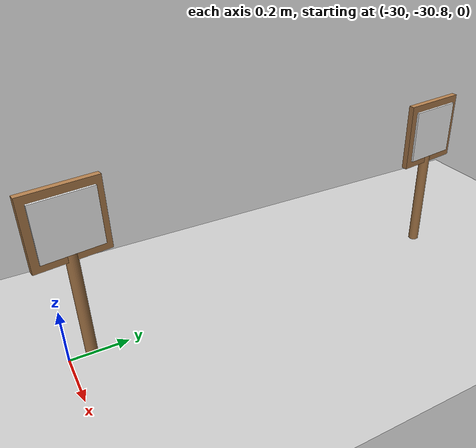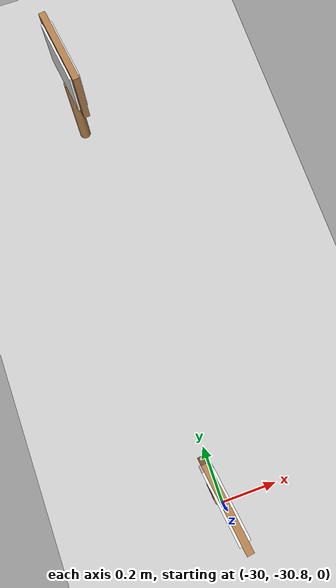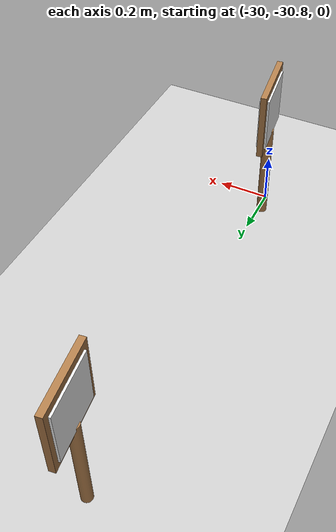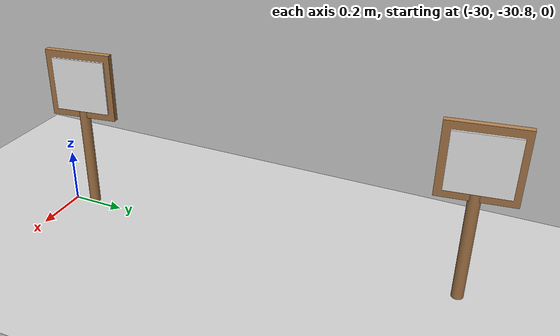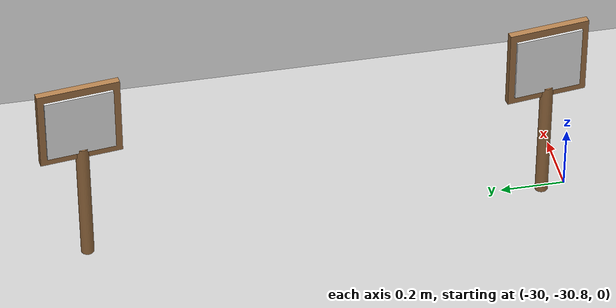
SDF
<sdf version="1.6">
 <world name="default">
  <model name="ground_plane">
   <static>1</static>
   <link name="link">
    <collision name="collision">
     <geometry><plane><normal>0 0 1</normal><size>100 100</size></plane></geometry>
     <surface>
      <contact><collide_bitmask>65535</collide_bitmask></contact>
      <friction><ode><mu>100</mu><mu2>50</mu2></ode></friction>
     </surface>
    </collision>
    <visual name="visual">
     <cast_shadows>0</cast_shadows>
     <geometry><plane><normal>0 0 1</normal><size>100 100</size></plane></geometry>
     <material>
      <script><uri>file://media/materials/scripts/gazebo.material</uri><name>Gazebo/Grey</name></script>
     </material>
    </visual>
   </link>
  </model>
  <model name="aruco_wood_thin_1">
   <link name="link_0">
    <inertial>
     <mass>1</mass>
     <inertia><ixx>0.145833</ixx><ixy>0</ixy><ixz>0</ixz><iyy>0.145833</iyy><iyz>0</iyz><izz>0.125</izz></inertia>
    </inertial>
    <pose>-0.017932 0.660168 -0.097628 0 -0 0</pose>
    <visual name="visual">
     <geometry><cylinder><radius>0.02</radius><length>0.4</length></cylinder></geometry>
     <material>
      <lighting>1</lighting>
      <script><uri>file://media/materials/scripts/gazebo.material</uri><name>Gazebo/Wood</name></script>
      <shader type="vertex"><normal_map>__default__</normal_map></shader>
      <ambient>0.3 0.3 0.3 1</ambient>
      <diffuse>0.7 0.7 0.7 1</diffuse>
      <specular>0.01 0.01 0.01 1</specular>
      <emissive>0 0 0 1</emissive>
     </material>
    </visual>
    <collision name="collision">
     <geometry><cylinder><radius>0.02</radius><length>0.4</length></cylinder></geometry>
     <surface>
      <friction>
       <ode><mu>1</mu><mu2>1</mu2><fdir1>0 0 0</fdir1><slip1>0</slip1><slip2>0</slip2></ode>
       <torsional>
        <coefficient>1</coefficient>
        <patch_radius>0</patch_radius>
        <surface_radius>0</surface_radius>
        <use_patch_radius>1</use_patch_radius>
        <ode><slip>0</slip></ode>
       </torsional>
      </friction>
      <bounce><restitution_coefficient>0</restitution_coefficient><threshold>1e+06</threshold></bounce>
      <contact>
       <collide_without_contact>0</collide_without_contact>
       <collide_without_contact_bitmask>1</collide_without_contact_bitmask>
       <collide_bitmask>1</collide_bitmask>
       <ode>
        <soft_cfm>0</soft_cfm>
        <soft_erp>0.2</soft_erp>
        <kp>1e+13</kp>
        <kd>1</kd>
        <max_vel>0.01</max_vel>
        <min_depth>0</min_depth>
       </ode>
       <bullet>
        <split_impulse>1</split_impulse>
        <split_impulse_penetration_threshold>-0.01</split_impulse_penetration_threshold>
        <soft_cfm>0</soft_cfm>
        <soft_erp>0.2</soft_erp>
        <kp>1e+13</kp>
        <kd>1</kd>
       </bullet>
      </contact>
     </surface>
    </collision>
   </link>
   <link name="link_1">
    <inertial>
     <mass>1.21407</mass>
     <inertia>
      <ixx>0.00864359</ixx>
      <ixy>0</ixy>
      <ixz>0</ixz>
      <iyy>0.00421539</iyy>
      <iyz>0</iyz>
      <izz>0.00446773</izz>
     </inertia>
    </inertial>
    <pose>-0.025899 0.66382 0.194379 0 -0 0</pose>
    <visual name="visual">
     <geometry><box><size>0.013978 0.209676 0.203642</size></box></geometry>
     <material>
      <script><uri>file://scripts</uri><uri>file://textures</uri><name>aruco/standard_opp</name></script>
      <emissive>0 0 0 1</emissive>
      <shader type="vertex"><normal_map>__default__</normal_map></shader>
      <ambient>1 1 1 1</ambient>
      <diffuse>1 1 1 1</diffuse>
      <specular>0 0 0 1</specular>
     </material>
    </visual>
    <collision name="collision">
     <geometry><box><size>0.013978 0.209676 0.203642</size></box></geometry>
     <surface>
      <friction>
       <ode><mu>1</mu><mu2>1</mu2><fdir1>0 0 0</fdir1><slip1>0</slip1><slip2>0</slip2></ode>
       <torsional>
        <coefficient>1</coefficient>
        <patch_radius>0</patch_radius>
        <surface_radius>0</surface_radius>
        <use_patch_radius>1</use_patch_radius>
        <ode><slip>0</slip></ode>
       </torsional>
      </friction>
      <bounce><restitution_coefficient>0</restitution_coefficient><threshold>1e+06</threshold></bounce>
      <contact>
       <collide_without_contact>0</collide_without_contact>
       <collide_without_contact_bitmask>1</collide_without_contact_bitmask>
       <collide_bitmask>1</collide_bitmask>
       <ode>
        <soft_cfm>0</soft_cfm>
        <soft_erp>0.2</soft_erp>
        <kp>1e+13</kp>
        <kd>1</kd>
        <max_vel>0.01</max_vel>
        <min_depth>0</min_depth>
       </ode>
       <bullet>
        <split_impulse>1</split_impulse>
        <split_impulse_penetration_threshold>-0.01</split_impulse_penetration_threshold>
        <soft_cfm>0</soft_cfm>
        <soft_erp>0.2</soft_erp>
        <kp>1e+13</kp>
        <kd>1</kd>
       </bullet>
      </contact>
     </surface>
    </collision>
   </link>
   <link name="link_1_clone">
    <inertial>
     <mass>0.519809</mass>
     <inertia>
      <ixx>0.00549167</ixx>
      <ixy>0</ixy>
      <ixz>0</ixz>
      <iyy>0.00278045</iyy>
      <iyz>0</iyz>
      <izz>0.00275135</izz>
     </inertia>
    </inertial>
    <pose>-0.015207 0.663184 0.195267 0 -0 0</pose>
    <visual name="visual">
     <geometry><box><size>0.021523 0.251103 0.252437</size></box></geometry>
     <material>
      <script><uri>file://scripts</uri><uri>file://textures</uri><name>Gazebo/Wood</name></script>
      <shader type="vertex"><normal_map>__default__</normal_map></shader>
      <ambient>1 1 1 1</ambient>
      <diffuse>1 1 1 1</diffuse>
      <specular>0 0 0 1</specular>
      <emissive>0 0 0 1</emissive>
     </material>
    </visual>
    <collision name="collision">
     <geometry><box><size>0.021523 0.251103 0.252437</size></box></geometry>
     <surface>
      <friction>
       <ode><mu>1</mu><mu2>1</mu2><fdir1>0 0 0</fdir1><slip1>0</slip1><slip2>0</slip2></ode>
       <torsional>
        <coefficient>1</coefficient>
        <patch_radius>0</patch_radius>
        <surface_radius>0</surface_radius>
        <use_patch_radius>1</use_patch_radius>
        <ode><slip>0</slip></ode>
       </torsional>
      </friction>
      <bounce><restitution_coefficient>0</restitution_coefficient><threshold>1e+06</threshold></bounce>
      <contact>
       <collide_without_contact>0</collide_without_contact>
       <collide_without_contact_bitmask>1</collide_without_contact_bitmask>
       <collide_bitmask>1</collide_bitmask>
       <ode>
        <soft_cfm>0</soft_cfm>
        <soft_erp>0.2</soft_erp>
        <kp>1e+13</kp>
        <kd>1</kd>
        <max_vel>0.01</max_vel>
        <min_depth>0</min_depth>
       </ode>
       <bullet>
        <split_impulse>1</split_impulse>
        <split_impulse_penetration_threshold>-0.01</split_impulse_penetration_threshold>
        <soft_cfm>0</soft_cfm>
        <soft_erp>0.2</soft_erp>
        <kp>1e+13</kp>
        <kd>1</kd>
       </bullet>
      </contact>
     </surface>
    </collision>
   </link>
   <link name="link_1_clone_0">
    <inertial>
     <mass>0.238009</mass>
     <inertia>
      <ixx>0.00161175</ixx>
      <ixy>0</ixy>
      <ixz>0</ixz>
      <iyy>0.000787067</iyy>
      <iyz>0</iyz>
      <izz>0.000832042</izz>
     </inertia>
    </inertial>
    <pose>-0.00403 0.665261 0.195247 0 -0 0</pose>
    <visual name="visual">
     <geometry><box><size>0.013624 0.204363 0.198738</size></box></geometry>
     <material>
      <script><uri>file://scripts</uri><uri>file://textures</uri><name>aruco/standard_opp</name></script>
      <emissive>0 0 0 1</emissive>
      <shader type="vertex"><normal_map>__default__</normal_map></shader>
      <ambient>1 1 1 1</ambient>
      <diffuse>1 1 1 1</diffuse>
      <specular>0 0 0 1</specular>
     </material>
    </visual>
    <collision name="collision">
     <geometry><box><size>0.013624 0.204363 0.198738</size></box></geometry>
     <surface>
      <friction>
       <ode><mu>1</mu><mu2>1</mu2><fdir1>0 0 0</fdir1><slip1>0</slip1><slip2>0</slip2></ode>
       <torsional>
        <coefficient>1</coefficient>
        <patch_radius>0</patch_radius>
        <surface_radius>0</surface_radius>
        <use_patch_radius>1</use_patch_radius>
        <ode><slip>0</slip></ode>
       </torsional>
      </friction>
      <bounce><restitution_coefficient>0</restitution_coefficient><threshold>1e+06</threshold></bounce>
      <contact>
       <collide_without_contact>0</collide_without_contact>
       <collide_without_contact_bitmask>1</collide_without_contact_bitmask>
       <collide_bitmask>1</collide_bitmask>
       <ode>
        <soft_cfm>0</soft_cfm>
        <soft_erp>0.2</soft_erp>
        <kp>1e+13</kp>
        <kd>1</kd>
        <max_vel>0.01</max_vel>
        <min_depth>0</min_depth>
       </ode>
       <bullet>
        <split_impulse>1</split_impulse>
        <split_impulse_penetration_threshold>-0.01</split_impulse_penetration_threshold>
        <soft_cfm>0</soft_cfm>
        <soft_erp>0.2</soft_erp>
        <kp>1e+13</kp>
        <kd>1</kd>
       </bullet>
      </contact>
     </surface>
    </collision>
   </link>
   <joint name="link_0_JOINT_0" type="fixed">
    <parent>link_0</parent>
    <child>link_1</child>
    <physics>
     <ode><limit><cfm>0</cfm><erp>0.2</erp></limit><suspension><cfm>0</cfm><erp>0.2</erp></suspension></ode>
    </physics>
   </joint>
   <joint name="link_1_JOINT_0_0" type="fixed">
    <parent>link_1</parent>
    <child>link_1_clone_0</child>
    <physics>
     <ode><limit><cfm>0</cfm><erp>0.2</erp></limit><suspension><cfm>0</cfm><erp>0.2</erp></suspension></ode>
    </physics>
   </joint>
   <joint name="link_1_JOINT_0" type="fixed">
    <parent>link_1</parent>
    <child>link_1_clone</child>
    <physics>
     <ode><limit><cfm>0</cfm><erp>0.2</erp></limit><suspension><cfm>0</cfm><erp>0.2</erp></suspension></ode>
    </physics>
   </joint>
   <static>0</static>
   <pose>-29.9245 -29.9611 0.297637 -1.3e-05 2.5e-05 0.129447</pose>
  </model>
  <model name="aruco_wood_thin_clone">
   <link name="link_0">
    <inertial>
     <mass>1</mass>
     <inertia><ixx>0.145833</ixx><ixy>0</ixy><ixz>0</ixz><iyy>0.145833</iyy><iyz>0</iyz><izz>0.125</izz></inertia>
    </inertial>
    <pose>-0.017932 0.660168 -0.097628 0 -0 0</pose>
    <visual name="visual">
     <geometry><cylinder><radius>0.02</radius><length>0.4</length></cylinder></geometry>
     <material>
      <lighting>1</lighting>
      <script><uri>file://media/materials/scripts/gazebo.material</uri><name>Gazebo/Wood</name></script>
      <shader type="vertex"><normal_map>__default__</normal_map></shader>
      <ambient>0.3 0.3 0.3 1</ambient>
      <diffuse>0.7 0.7 0.7 1</diffuse>
      <specular>0.01 0.01 0.01 1</specular>
      <emissive>0 0 0 1</emissive>
     </material>
    </visual>
    <collision name="collision">
     <geometry><cylinder><radius>0.02</radius><length>0.4</length></cylinder></geometry>
     <surface>
      <friction>
       <ode><mu>1</mu><mu2>1</mu2><fdir1>0 0 0</fdir1><slip1>0</slip1><slip2>0</slip2></ode>
       <torsional>
        <coefficient>1</coefficient>
        <patch_radius>0</patch_radius>
        <surface_radius>0</surface_radius>
        <use_patch_radius>1</use_patch_radius>
        <ode><slip>0</slip></ode>
       </torsional>
      </friction>
      <bounce><restitution_coefficient>0</restitution_coefficient><threshold>1e+06</threshold></bounce>
      <contact>
       <collide_without_contact>0</collide_without_contact>
       <collide_without_contact_bitmask>1</collide_without_contact_bitmask>
       <collide_bitmask>1</collide_bitmask>
       <ode>
        <soft_cfm>0</soft_cfm>
        <soft_erp>0.2</soft_erp>
        <kp>1e+13</kp>
        <kd>1</kd>
        <max_vel>0.01</max_vel>
        <min_depth>0</min_depth>
       </ode>
       <bullet>
        <split_impulse>1</split_impulse>
        <split_impulse_penetration_threshold>-0.01</split_impulse_penetration_threshold>
        <soft_cfm>0</soft_cfm>
        <soft_erp>0.2</soft_erp>
        <kp>1e+13</kp>
        <kd>1</kd>
       </bullet>
      </contact>
     </surface>
    </collision>
   </link>
   <link name="link_1">
    <inertial>
     <mass>1.21407</mass>
     <inertia>
      <ixx>0.00864359</ixx>
      <ixy>0</ixy>
      <ixz>0</ixz>
      <iyy>0.00421539</iyy>
      <iyz>0</iyz>
      <izz>0.00446773</izz>
     </inertia>
    </inertial>
    <pose>-0.025899 0.66382 0.194379 0 -0 0</pose>
    <visual name="visual">
     <geometry><box><size>0.013978 0.209676 0.203642</size></box></geometry>
     <material>
      <script><uri>file://scripts</uri><uri>file://textures</uri><name>aruco/standard_opp</name></script>
      <emissive>0 0 0 1</emissive>
      <shader type="vertex"><normal_map>__default__</normal_map></shader>
      <ambient>1 1 1 1</ambient>
      <diffuse>1 1 1 1</diffuse>
      <specular>0 0 0 1</specular>
     </material>
    </visual>
    <collision name="collision">
     <geometry><box><size>0.013978 0.209676 0.203642</size></box></geometry>
     <surface>
      <friction>
       <ode><mu>1</mu><mu2>1</mu2><fdir1>0 0 0</fdir1><slip1>0</slip1><slip2>0</slip2></ode>
       <torsional>
        <coefficient>1</coefficient>
        <patch_radius>0</patch_radius>
        <surface_radius>0</surface_radius>
        <use_patch_radius>1</use_patch_radius>
        <ode><slip>0</slip></ode>
       </torsional>
      </friction>
      <bounce><restitution_coefficient>0</restitution_coefficient><threshold>1e+06</threshold></bounce>
      <contact>
       <collide_without_contact>0</collide_without_contact>
       <collide_without_contact_bitmask>1</collide_without_contact_bitmask>
       <collide_bitmask>1</collide_bitmask>
       <ode>
        <soft_cfm>0</soft_cfm>
        <soft_erp>0.2</soft_erp>
        <kp>1e+13</kp>
        <kd>1</kd>
        <max_vel>0.01</max_vel>
        <min_depth>0</min_depth>
       </ode>
       <bullet>
        <split_impulse>1</split_impulse>
        <split_impulse_penetration_threshold>-0.01</split_impulse_penetration_threshold>
        <soft_cfm>0</soft_cfm>
        <soft_erp>0.2</soft_erp>
        <kp>1e+13</kp>
        <kd>1</kd>
       </bullet>
      </contact>
     </surface>
    </collision>
   </link>
   <link name="link_1_clone">
    <inertial>
     <mass>0.519809</mass>
     <inertia>
      <ixx>0.00549167</ixx>
      <ixy>0</ixy>
      <ixz>0</ixz>
      <iyy>0.00278045</iyy>
      <iyz>0</iyz>
      <izz>0.00275135</izz>
     </inertia>
    </inertial>
    <pose>-0.015207 0.663184 0.195267 0 -0 0</pose>
    <visual name="visual">
     <geometry><box><size>0.021523 0.251103 0.252437</size></box></geometry>
     <material>
      <script><uri>file://scripts</uri><uri>file://textures</uri><name>Gazebo/Wood</name></script>
      <shader type="vertex"><normal_map>__default__</normal_map></shader>
      <ambient>1 1 1 1</ambient>
      <diffuse>1 1 1 1</diffuse>
      <specular>0 0 0 1</specular>
      <emissive>0 0 0 1</emissive>
     </material>
    </visual>
    <collision name="collision">
     <geometry><box><size>0.021523 0.251103 0.252437</size></box></geometry>
     <surface>
      <friction>
       <ode><mu>1</mu><mu2>1</mu2><fdir1>0 0 0</fdir1><slip1>0</slip1><slip2>0</slip2></ode>
       <torsional>
        <coefficient>1</coefficient>
        <patch_radius>0</patch_radius>
        <surface_radius>0</surface_radius>
        <use_patch_radius>1</use_patch_radius>
        <ode><slip>0</slip></ode>
       </torsional>
      </friction>
      <bounce><restitution_coefficient>0</restitution_coefficient><threshold>1e+06</threshold></bounce>
      <contact>
       <collide_without_contact>0</collide_without_contact>
       <collide_without_contact_bitmask>1</collide_without_contact_bitmask>
       <collide_bitmask>1</collide_bitmask>
       <ode>
        <soft_cfm>0</soft_cfm>
        <soft_erp>0.2</soft_erp>
        <kp>1e+13</kp>
        <kd>1</kd>
        <max_vel>0.01</max_vel>
        <min_depth>0</min_depth>
       </ode>
       <bullet>
        <split_impulse>1</split_impulse>
        <split_impulse_penetration_threshold>-0.01</split_impulse_penetration_threshold>
        <soft_cfm>0</soft_cfm>
        <soft_erp>0.2</soft_erp>
        <kp>1e+13</kp>
        <kd>1</kd>
       </bullet>
      </contact>
     </surface>
    </collision>
   </link>
   <link name="link_1_clone_0">
    <inertial>
     <mass>0.238009</mass>
     <inertia>
      <ixx>0.00161175</ixx>
      <ixy>0</ixy>
      <ixz>0</ixz>
      <iyy>0.000787067</iyy>
      <iyz>0</iyz>
      <izz>0.000832042</izz>
     </inertia>
    </inertial>
    <pose>-0.00403 0.665261 0.195247 0 -0 0</pose>
    <visual name="visual">
     <geometry><box><size>0.013624 0.204363 0.198738</size></box></geometry>
     <material>
      <script><uri>file://scripts</uri><uri>file://textures</uri><name>aruco/standard_opp</name></script>
      <emissive>0 0 0 1</emissive>
      <shader type="vertex"><normal_map>__default__</normal_map></shader>
      <ambient>1 1 1 1</ambient>
      <diffuse>1 1 1 1</diffuse>
      <specular>0 0 0 1</specular>
     </material>
    </visual>
    <collision name="collision">
     <geometry><box><size>0.013624 0.204363 0.198738</size></box></geometry>
     <surface>
      <friction>
       <ode><mu>1</mu><mu2>1</mu2><fdir1>0 0 0</fdir1><slip1>0</slip1><slip2>0</slip2></ode>
       <torsional>
        <coefficient>1</coefficient>
        <patch_radius>0</patch_radius>
        <surface_radius>0</surface_radius>
        <use_patch_radius>1</use_patch_radius>
        <ode><slip>0</slip></ode>
       </torsional>
      </friction>
      <bounce><restitution_coefficient>0</restitution_coefficient><threshold>1e+06</threshold></bounce>
      <contact>
       <collide_without_contact>0</collide_without_contact>
       <collide_without_contact_bitmask>1</collide_without_contact_bitmask>
       <collide_bitmask>1</collide_bitmask>
       <ode>
        <soft_cfm>0</soft_cfm>
        <soft_erp>0.2</soft_erp>
        <kp>1e+13</kp>
        <kd>1</kd>
        <max_vel>0.01</max_vel>
        <min_depth>0</min_depth>
       </ode>
       <bullet>
        <split_impulse>1</split_impulse>
        <split_impulse_penetration_threshold>-0.01</split_impulse_penetration_threshold>
        <soft_cfm>0</soft_cfm>
        <soft_erp>0.2</soft_erp>
        <kp>1e+13</kp>
        <kd>1</kd>
       </bullet>
      </contact>
     </surface>
    </collision>
   </link>
   <joint name="link_0_JOINT_0" type="fixed">
    <parent>link_0</parent>
    <child>link_1</child>
    <physics>
     <ode><limit><cfm>0</cfm><erp>0.2</erp></limit><suspension><cfm>0</cfm><erp>0.2</erp></suspension></ode>
    </physics>
   </joint>
   <joint name="link_1_JOINT_0_0" type="fixed">
    <parent>link_1</parent>
    <child>link_1_clone_0</child>
    <physics>
     <ode><limit><cfm>0</cfm><erp>0.2</erp></limit><suspension><cfm>0</cfm><erp>0.2</erp></suspension></ode>
    </physics>
   </joint>
   <joint name="link_1_JOINT_0" type="fixed">
    <parent>link_1</parent>
    <child>link_1_clone</child>
    <physics>
     <ode><limit><cfm>0</cfm><erp>0.2</erp></limit><suspension><cfm>0</cfm><erp>0.2</erp></suspension></ode>
    </physics>
   </joint>
   <static>0</static>
   <pose>-29.903 -31.3755 0.29767 -5.7e-05 -9e-05 0.139225</pose>
  </model>
 </world>
</sdf>
